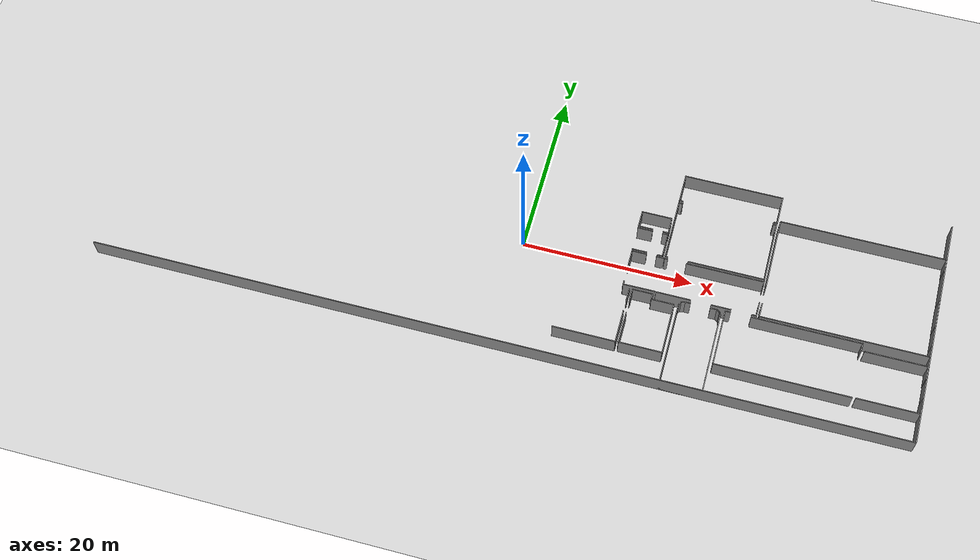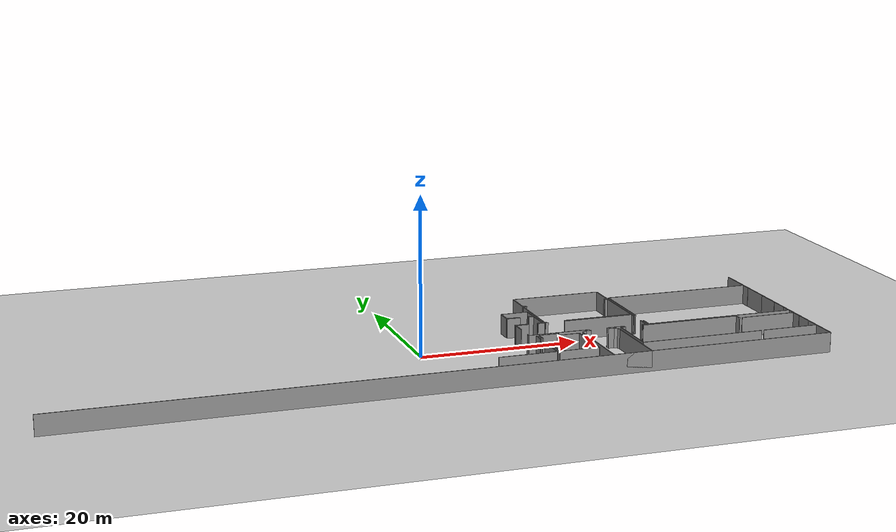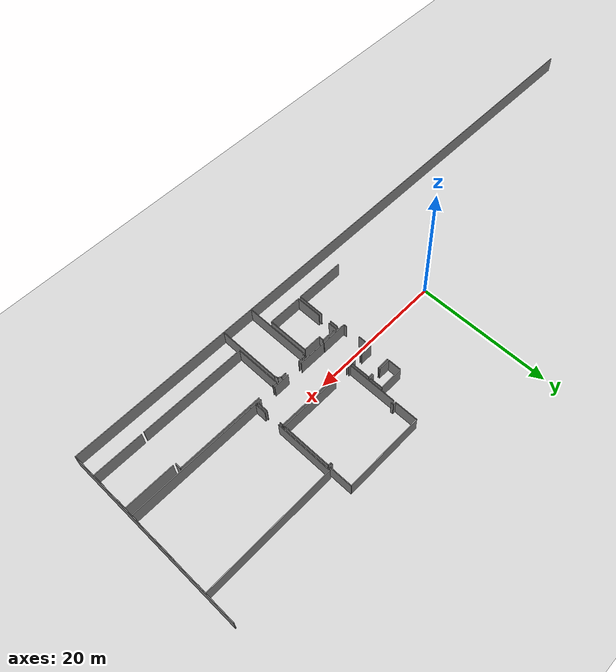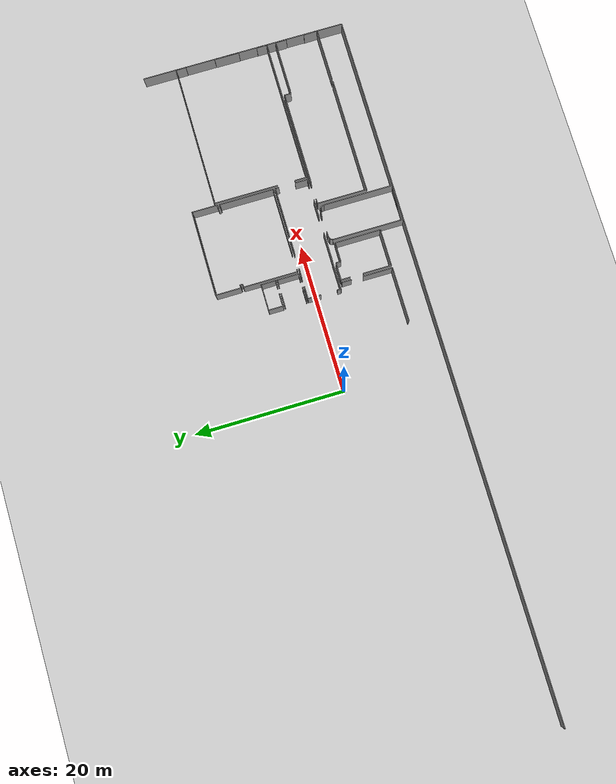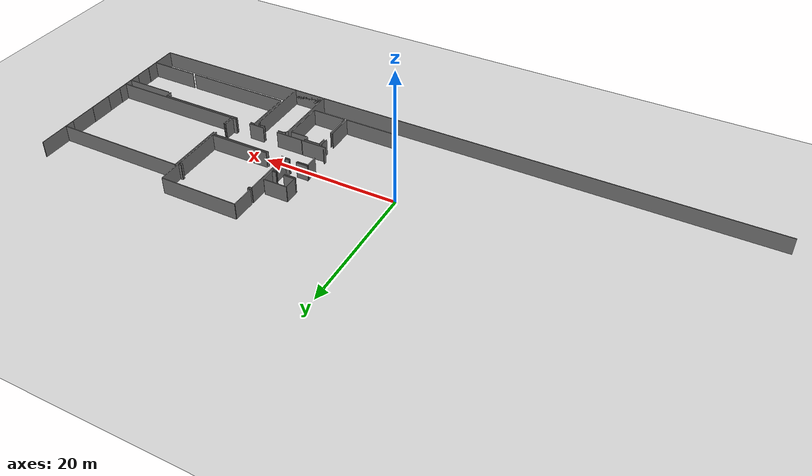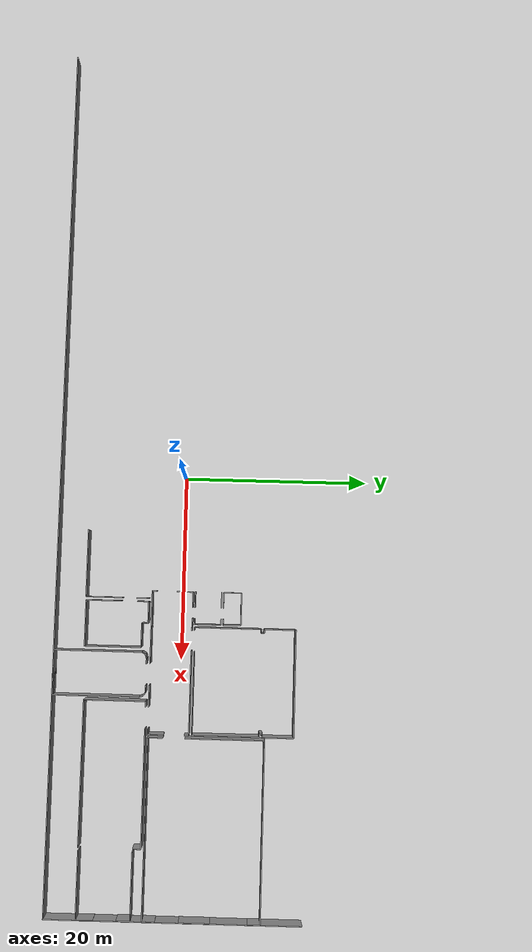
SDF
<sdf version="1.6">
 <world name="default">
  <model name="ground_plane">
   <static>1</static>
   <link name="link">
    <collision name="collision">
     <geometry><plane><normal>0 0 1</normal><size>100 100</size></plane></geometry>
     <surface><friction><ode><mu>100</mu><mu2>50</mu2></ode></friction></surface>
    </collision>
    <visual name="visual">
     <cast_shadows>0</cast_shadows>
     <geometry><plane><normal>0 0 1</normal><size>100 100</size></plane></geometry>
     <material>
      <script><uri>file://media/materials/scripts/gazebo.material</uri><name>Gazebo/Grey</name></script>
     </material>
    </visual>
   </link>
  </model>
  <model name="0510032271_A_40_1_105">
   <static>1</static>
   <link name="Wall_136">
    <collision name="Wall_136_Collision">
     <geometry><box><size>7.29951004036 0.1 2.5</size></box></geometry>
     <pose>3.64975502018 0 1.25 0 0 0</pose>
    </collision>
    <visual name="Wall_136_Visual">
     <pose>3.64975502018 0 1.25 0 0 0</pose>
     <geometry><box><size>7.29951004036 0.1 2.5</size></box></geometry>
     <material>
      <script><uri>file://media/materials/scripts/gazebo.material</uri><name>Gazebo/Grey</name></script>
      <ambient>1 1 1 1</ambient>
     </material>
    </visual>
    <pose>60.9283846564 -24.2889238659 0 0 0 3.14159265359</pose>
   </link>
   <link name="Wall_142">
    <collision name="Wall_142_Collision">
     <geometry><box><size>1.33088776624 0.1 2.5</size></box></geometry>
     <pose>0.665443883121 0 1.25 0 0 0</pose>
    </collision>
    <visual name="Wall_142_Visual">
     <pose>0.665443883121 0 1.25 0 0 0</pose>
     <geometry><box><size>1.33088776624 0.1 2.5</size></box></geometry>
     <material>
      <script><uri>file://media/materials/scripts/gazebo.material</uri><name>Gazebo/Grey</name></script>
      <ambient>1 1 1 1</ambient>
     </material>
    </visual>
    <pose>60.9316849026 -17.4360894621 0 0 0 -1.57079632679</pose>
   </link>
   <link name="Wall_143">
    <collision name="Wall_143_Collision">
     <geometry><box><size>3.95610810144 0.1 2.5</size></box></geometry>
     <pose>1.97805405072 0 1.25 0 0 0</pose>
    </collision>
    <visual name="Wall_143_Visual">
     <pose>1.97805405072 0 1.25 0 0 0</pose>
     <geometry><box><size>3.95610810144 0.1 2.5</size></box></geometry>
     <material>
      <script><uri>file://media/materials/scripts/gazebo.material</uri><name>Gazebo/Grey</name></script>
      <ambient>1 1 1 1</ambient>
     </material>
    </visual>
    <pose>60.9316849026 -20.332817141 0 0 0 -1.57163054228</pose>
   </link>
   <link name="Wall_144">
    <collision name="Wall_144_Collision">
     <geometry><box><size>4.97270950217 0.1 2.5</size></box></geometry>
     <pose>2.48635475109 0 1.25 0 0 0</pose>
    </collision>
    <visual name="Wall_144_Visual">
     <pose>2.48635475109 0 1.25 0 0 0</pose>
     <geometry><box><size>4.97270950217 0.1 2.5</size></box></geometry>
     <material>
      <script><uri>file://media/materials/scripts/gazebo.material</uri><name>Gazebo/Grey</name></script>
      <ambient>1 1 1 1</ambient>
     </material>
    </visual>
    <pose>66.2620903252 -24.2561752685 0 0 0 3.14159265359</pose>
   </link>
   <link name="Wall_145">
    <collision name="Wall_145_Collision">
     <geometry><box><size>3.80505699271 0.1 2.5</size></box></geometry>
     <pose>1.90252849636 0 1.25 0 0 0</pose>
    </collision>
    <visual name="Wall_145_Visual">
     <pose>1.90252849636 0 1.25 0 0 0</pose>
     <geometry><box><size>3.80505699271 0.1 2.5</size></box></geometry>
     <material>
      <script><uri>file://media/materials/scripts/gazebo.material</uri><name>Gazebo/Grey</name></script>
      <ambient>1 1 1 1</ambient>
     </material>
    </visual>
    <pose>61.289380823 -24.2561752685 0 0 0 1.57079632679</pose>
   </link>
   <link name="Wall_146">
    <collision name="Wall_146_Collision">
     <geometry><box><size>1.22858013252 0.1 2.5</size></box></geometry>
     <pose>0.614290066259 0 1.25 0 0 0</pose>
    </collision>
    <visual name="Wall_146_Visual">
     <pose>0.614290066259 0 1.25 0 0 0</pose>
     <geometry><box><size>1.22858013252 0.1 2.5</size></box></geometry>
     <material>
      <script><uri>file://media/materials/scripts/gazebo.material</uri><name>Gazebo/Grey</name></script>
      <ambient>1 1 1 1</ambient>
     </material>
    </visual>
    <pose>61.289380823 -18.6722855475 0 0 0 1.57079632679</pose>
   </link>
   <link name="Wall_147">
    <collision name="Wall_147_Collision">
     <geometry><box><size>2.35015612703 0.1 2.5</size></box></geometry>
     <pose>1.17507806352 0 1.25 0 0 0</pose>
    </collision>
    <visual name="Wall_147_Visual">
     <pose>1.17507806352 0 1.25 0 0 0</pose>
     <geometry><box><size>2.35015612703 0.1 2.5</size></box></geometry>
     <material>
      <script><uri>file://media/materials/scripts/gazebo.material</uri><name>Gazebo/Grey</name></script>
      <ambient>1 1 1 1</ambient>
     </material>
    </visual>
    <pose>61.289380823 -17.4437054149 0 0 0 0.0</pose>
   </link>
   <link name="Wall_148">
    <collision name="Wall_148_Collision">
     <geometry><box><size>0.671853976797 0.1 2.5</size></box></geometry>
     <pose>0.335926988398 0 1.25 0 0 0</pose>
    </collision>
    <visual name="Wall_148_Visual">
     <pose>0.335926988398 0 1.25 0 0 0</pose>
     <geometry><box><size>0.671853976797 0.1 2.5</size></box></geometry>
     <material>
      <script><uri>file://media/materials/scripts/gazebo.material</uri><name>Gazebo/Grey</name></script>
      <ambient>1 1 1 1</ambient>
     </material>
    </visual>
    <pose>63.6395369501 -17.4437054149 0 0 0 -1.57079632679</pose>
   </link>
   <link name="Wall_149">
    <collision name="Wall_149_Collision">
     <geometry><box><size>2.61062171562 0.1 2.5</size></box></geometry>
     <pose>1.30531085781 0 1.25 0 0 0</pose>
    </collision>
    <visual name="Wall_149_Visual">
     <pose>1.30531085781 0 1.25 0 0 0</pose>
     <geometry><box><size>2.61062171562 0.1 2.5</size></box></geometry>
     <material>
      <script><uri>file://media/materials/scripts/gazebo.material</uri><name>Gazebo/Grey</name></script>
      <ambient>1 1 1 1</ambient>
     </material>
    </visual>
    <pose>63.6395369501 -18.1155593917 0 0 0 0.0</pose>
   </link>
   <link name="Wall_150">
    <collision name="Wall_150_Collision">
     <geometry><box><size>6.14062746875 0.1 2.5</size></box></geometry>
     <pose>3.07031373437 0 1.25 0 0 0</pose>
    </collision>
    <visual name="Wall_150_Visual">
     <pose>3.07031373437 0 1.25 0 0 0</pose>
     <geometry><box><size>6.14062746875 0.1 2.5</size></box></geometry>
     <material>
      <script><uri>file://media/materials/scripts/gazebo.material</uri><name>Gazebo/Grey</name></script>
      <ambient>1 1 1 1</ambient>
     </material>
    </visual>
    <pose>66.2501586657 -18.1155593917 0 0 0 -1.56885325712</pose>
   </link>
   <link name="Wall_151">
    <collision name="Wall_151_Collision">
     <geometry><box><size>0.501891294966 0.1 2.5</size></box></geometry>
     <pose>0.250945647483 0 1.25 0 0 0</pose>
    </collision>
    <visual name="Wall_151_Visual">
     <pose>0.250945647483 0 1.25 0 0 0</pose>
     <geometry><box><size>0.501891294966 0.1 2.5</size></box></geometry>
     <material>
      <script><uri>file://media/materials/scripts/gazebo.material</uri><name>Gazebo/Grey</name></script>
      <ambient>1 1 1 1</ambient>
     </material>
    </visual>
    <pose>60.1218552461 -17.0905790663 0 0 0 1.57079632679</pose>
   </link>
   <link name="Wall_152">
    <collision name="Wall_152_Collision">
     <geometry><box><size>1.75166916301 0.1 2.5</size></box></geometry>
     <pose>0.875834581503 0 1.25 0 0 0</pose>
    </collision>
    <visual name="Wall_152_Visual">
     <pose>0.875834581503 0 1.25 0 0 0</pose>
     <geometry><box><size>1.75166916301 0.1 2.5</size></box></geometry>
     <material>
      <script><uri>file://media/materials/scripts/gazebo.material</uri><name>Gazebo/Grey</name></script>
      <ambient>1 1 1 1</ambient>
     </material>
    </visual>
    <pose>60.1218552461 -14.3935162854 0 0 0 1.57079632679</pose>
   </link>
   <link name="Wall_153">
    <collision name="Wall_153_Collision">
     <geometry><box><size>1.69010687721 0.1 2.5</size></box></geometry>
     <pose>0.845053438603 0 1.25 0 0 0</pose>
    </collision>
    <visual name="Wall_153_Visual">
     <pose>0.845053438603 0 1.25 0 0 0</pose>
     <geometry><box><size>1.69010687721 0.1 2.5</size></box></geometry>
     <material>
      <script><uri>file://media/materials/scripts/gazebo.material</uri><name>Gazebo/Grey</name></script>
      <ambient>1 1 1 1</ambient>
     </material>
    </visual>
    <pose>60.1218552461 -12.6418471224 0 0 0 0.0</pose>
   </link>
   <link name="Wall_154">
    <collision name="Wall_154_Collision">
     <geometry><box><size>0.878880962656 0.1 2.5</size></box></geometry>
     <pose>0.439440481328 0 1.25 0 0 0</pose>
    </collision>
    <visual name="Wall_154_Visual">
     <pose>0.439440481328 0 1.25 0 0 0</pose>
     <geometry><box><size>0.878880962656 0.1 2.5</size></box></geometry>
     <material>
      <script><uri>file://media/materials/scripts/gazebo.material</uri><name>Gazebo/Grey</name></script>
      <ambient>1 1 1 1</ambient>
     </material>
    </visual>
    <pose>62.9772029144 -12.6418471224 0 0 0 0.0</pose>
   </link>
   <link name="Wall_155">
    <collision name="Wall_155_Collision">
     <geometry><box><size>3.73436131252 0.1 2.5</size></box></geometry>
     <pose>1.86718065626 0 1.25 0 0 0</pose>
    </collision>
    <visual name="Wall_155_Visual">
     <pose>1.86718065626 0 1.25 0 0 0</pose>
     <geometry><box><size>3.73436131252 0.1 2.5</size></box></geometry>
     <material>
      <script><uri>file://media/materials/scripts/gazebo.material</uri><name>Gazebo/Grey</name></script>
      <ambient>1 1 1 1</ambient>
     </material>
    </visual>
    <pose>63.856083877 -17.0590997944 0 0 0 -3.13316292703</pose>
   </link>
   <link name="Wall_156">
    <collision name="Wall_156_Collision">
     <geometry><box><size>0.624762001472 0.1 2.5</size></box></geometry>
     <pose>0.312381000736 0 1.25 0 0 0</pose>
    </collision>
    <visual name="Wall_156_Visual">
     <pose>0.312381000736 0 1.25 0 0 0</pose>
     <geometry><box><size>0.624762001472 0.1 2.5</size></box></geometry>
     <material>
      <script><uri>file://media/materials/scripts/gazebo.material</uri><name>Gazebo/Grey</name></script>
      <ambient>1 1 1 1</ambient>
     </material>
    </visual>
    <pose>63.6265898302 -12.4063872458 0 0 0 3.14159265359</pose>
   </link>
   <link name="Wall_157">
    <collision name="Wall_157_Collision">
     <geometry><box><size>1.75166916301 0.1 2.5</size></box></geometry>
     <pose>0.875834581503 0 1.25 0 0 0</pose>
    </collision>
    <visual name="Wall_157_Visual">
     <pose>0.875834581503 0 1.25 0 0 0</pose>
     <geometry><box><size>1.75166916301 0.1 2.5</size></box></geometry>
     <material>
      <script><uri>file://media/materials/scripts/gazebo.material</uri><name>Gazebo/Grey</name></script>
      <ambient>1 1 1 1</ambient>
     </material>
    </visual>
    <pose>61.8194511437 -12.4063872458 0 0 0 3.14159265359</pose>
   </link>
   <link name="Wall_159">
    <collision name="Wall_159_Collision">
     <geometry><box><size>1.7389759082 0.1 2.5</size></box></geometry>
     <pose>0.869487954101 0 1.25 0 0 0</pose>
    </collision>
    <visual name="Wall_159_Visual">
     <pose>0.869487954101 0 1.25 0 0 0</pose>
     <geometry><box><size>1.7389759082 0.1 2.5</size></box></geometry>
     <material>
      <script><uri>file://media/materials/scripts/gazebo.material</uri><name>Gazebo/Grey</name></script>
      <ambient>1 1 1 1</ambient>
     </material>
    </visual>
    <pose>60.0677819807 -9.51930644056 0 0 0 0.0</pose>
   </link>
   <link name="Wall_160">
    <collision name="Wall_160_Collision">
     <geometry><box><size>0.61841537407 0.1 2.5</size></box></geometry>
     <pose>0.309207687035 0 1.25 0 0 0</pose>
    </collision>
    <visual name="Wall_160_Visual">
     <pose>0.309207687035 0 1.25 0 0 0</pose>
     <geometry><box><size>0.61841537407 0.1 2.5</size></box></geometry>
     <material>
      <script><uri>file://media/materials/scripts/gazebo.material</uri><name>Gazebo/Grey</name></script>
      <ambient>1 1 1 1</ambient>
     </material>
    </visual>
    <pose>62.9956081338 -9.51930644056 0 0 0 0.0</pose>
   </link>
   <link name="Wall_161">
    <collision name="Wall_161_Collision">
     <geometry><box><size>2.88710815325 0.1 2.5</size></box></geometry>
     <pose>1.44355407662 0 1.25 0 0 0</pose>
    </collision>
    <visual name="Wall_161_Visual">
     <pose>1.44355407662 0 1.25 0 0 0</pose>
     <geometry><box><size>2.88710815325 0.1 2.5</size></box></geometry>
     <material>
      <script><uri>file://media/materials/scripts/gazebo.material</uri><name>Gazebo/Grey</name></script>
      <ambient>1 1 1 1</ambient>
     </material>
    </visual>
    <pose>63.6140235079 -9.51930644056 0 0 0 -1.56644374931</pose>
   </link>
   <link name="Wall_162">
    <collision name="Wall_162_Collision">
     <geometry><box><size>0.642532558199 0.1 2.5</size></box></geometry>
     <pose>0.321266279099 0 1.25 0 0 0</pose>
    </collision>
    <visual name="Wall_162_Visual">
     <pose>0.321266279099 0 1.25 0 0 0</pose>
     <geometry><box><size>0.642532558199 0.1 2.5</size></box></geometry>
     <material>
      <script><uri>file://media/materials/scripts/gazebo.material</uri><name>Gazebo/Grey</name></script>
      <ambient>1 1 1 1</ambient>
     </material>
    </visual>
    <pose>63.6273514255 -9.28600441725 0 0 0 3.14159265359</pose>
   </link>
   <link name="Wall_163">
    <collision name="Wall_163_Collision">
     <geometry><box><size>1.71930136326 0.1 2.5</size></box></geometry>
     <pose>0.859650681628 0 1.25 0 0 0</pose>
    </collision>
    <visual name="Wall_163_Visual">
     <pose>0.859650681628 0 1.25 0 0 0</pose>
     <geometry><box><size>1.71930136326 0.1 2.5</size></box></geometry>
     <material>
      <script><uri>file://media/materials/scripts/gazebo.material</uri><name>Gazebo/Grey</name></script>
      <ambient>1 1 1 1</ambient>
     </material>
    </visual>
    <pose>61.81627783 -9.28600441725 0 0 0 3.14159265359</pose>
   </link>
   <link name="Wall_164">
    <collision name="Wall_164_Collision">
     <geometry><box><size>1.94473356858 0.1 2.5</size></box></geometry>
     <pose>0.972366784291 0 1.25 0 0 0</pose>
    </collision>
    <visual name="Wall_164_Visual">
     <pose>0.972366784291 0 1.25 0 0 0</pose>
     <geometry><box><size>1.94473356858 0.1 2.5</size></box></geometry>
     <material>
      <script><uri>file://media/materials/scripts/gazebo.material</uri><name>Gazebo/Grey</name></script>
      <ambient>1 1 1 1</ambient>
     </material>
    </visual>
    <pose>60.0969764667 -9.28600441725 0 0 0 1.57079632679</pose>
   </link>
   <link name="Wall_165">
    <collision name="Wall_165_Collision">
     <geometry><box><size>3.49699169861 0.1 2.5</size></box></geometry>
     <pose>1.74849584931 0 1.25 0 0 0</pose>
    </collision>
    <visual name="Wall_165_Visual">
     <pose>1.74849584931 0 1.25 0 0 0</pose>
     <geometry><box><size>3.49699169861 0.1 2.5</size></box></geometry>
     <material>
      <script><uri>file://media/materials/scripts/gazebo.material</uri><name>Gazebo/Grey</name></script>
      <ambient>1 1 1 1</ambient>
     </material>
    </visual>
    <pose>60.0969764667 -7.34127084867 0 0 0 0.0</pose>
   </link>
   <link name="Wall_166">
    <collision name="Wall_166_Collision">
     <geometry><box><size>1.94502007569 0.1 2.5</size></box></geometry>
     <pose>0.972510037844 0 1.25 0 0 0</pose>
    </collision>
    <visual name="Wall_166_Visual">
     <pose>0.972510037844 0 1.25 0 0 0</pose>
     <geometry><box><size>1.94502007569 0.1 2.5</size></box></geometry>
     <material>
      <script><uri>file://media/materials/scripts/gazebo.material</uri><name>Gazebo/Grey</name></script>
      <ambient>1 1 1 1</ambient>
     </material>
    </visual>
    <pose>63.5939681653 -7.34127084867 0 0 0 -1.55363203127</pose>
   </link>
   <link name="Wall_167">
    <collision name="Wall_167_Collision">
     <geometry><box><size>0.570815668554 0.1 2.5</size></box></geometry>
     <pose>0.285407834277 0 1.25 0 0 0</pose>
    </collision>
    <visual name="Wall_167_Visual">
     <pose>0.285407834277 0 1.25 0 0 0</pose>
     <geometry><box><size>0.570815668554 0.1 2.5</size></box></geometry>
     <material>
      <script><uri>file://media/materials/scripts/gazebo.material</uri><name>Gazebo/Grey</name></script>
      <ambient>1 1 1 1</ambient>
     </material>
    </visual>
    <pose>75.5329897692 -17.0874057526 0 0 0 3.14159265359</pose>
   </link>
   <link name="Wall_168">
    <collision name="Wall_168_Collision">
     <geometry><box><size>2.32819679622 0.1 2.5</size></box></geometry>
     <pose>1.16409839811 0 1.25 0 0 0</pose>
    </collision>
    <visual name="Wall_168_Visual">
     <pose>1.16409839811 0 1.25 0 0 0</pose>
     <geometry><box><size>2.32819679622 0.1 2.5</size></box></geometry>
     <material>
      <script><uri>file://media/materials/scripts/gazebo.material</uri><name>Gazebo/Grey</name></script>
      <ambient>1 1 1 1</ambient>
     </material>
    </visual>
    <pose>72.6156990175 -17.0874057526 0 0 0 3.14159265359</pose>
   </link>
   <link name="Wall_169">
    <collision name="Wall_169_Collision">
     <geometry><box><size>4.02769668198 0.1 2.5</size></box></geometry>
     <pose>2.01384834099 0 1.25 0 0 0</pose>
    </collision>
    <visual name="Wall_169_Visual">
     <pose>2.01384834099 0 1.25 0 0 0</pose>
     <geometry><box><size>4.02769668198 0.1 2.5</size></box></geometry>
     <material>
      <script><uri>file://media/materials/scripts/gazebo.material</uri><name>Gazebo/Grey</name></script>
      <ambient>1 1 1 1</ambient>
     </material>
    </visual>
    <pose>67.9806300932 -17.0874057526 0 0 0 3.14159265359</pose>
   </link>
   <link name="Wall_170">
    <collision name="Wall_170_Collision">
     <geometry><box><size>0.374197151634 0.1 2.5</size></box></geometry>
     <pose>0.187098575817 0 1.25 0 0 0</pose>
    </collision>
    <visual name="Wall_170_Visual">
     <pose>0.187098575817 0 1.25 0 0 0</pose>
     <geometry><box><size>0.374197151634 0.1 2.5</size></box></geometry>
     <material>
      <script><uri>file://media/materials/scripts/gazebo.material</uri><name>Gazebo/Grey</name></script>
      <ambient>1 1 1 1</ambient>
     </material>
    </visual>
    <pose>63.9529334112 -12.6588560839 0 0 0 0.0</pose>
   </link>
   <link name="Wall_171">
    <collision name="Wall_171_Collision">
     <geometry><box><size>9.06298393034 0.1 2.5</size></box></geometry>
     <pose>4.53149196517 0 1.25 0 0 0</pose>
    </collision>
    <visual name="Wall_171_Visual">
     <pose>4.53149196517 0 1.25 0 0 0</pose>
     <geometry><box><size>9.06298393034 0.1 2.5</size></box></geometry>
     <material>
      <script><uri>file://media/materials/scripts/gazebo.material</uri><name>Gazebo/Grey</name></script>
      <ambient>1 1 1 1</ambient>
     </material>
    </visual>
    <pose>66.4778756569 -12.6588560839 0 0 0 0.0</pose>
   </link>
   <link name="Wall_172">
    <collision name="Wall_172_Collision">
     <geometry><box><size>0.503414485542 0.1 2.5</size></box></geometry>
     <pose>0.251707242771 0 1.25 0 0 0</pose>
    </collision>
    <visual name="Wall_172_Visual">
     <pose>0.251707242771 0 1.25 0 0 0</pose>
     <geometry><box><size>0.503414485542 0.1 2.5</size></box></geometry>
     <material>
      <script><uri>file://media/materials/scripts/gazebo.material</uri><name>Gazebo/Grey</name></script>
      <ambient>1 1 1 1</ambient>
     </material>
    </visual>
    <pose>75.5408595872 -12.6588560839 0 0 0 -1.57079632679</pose>
   </link>
   <link name="Wall_173">
    <collision name="Wall_173_Collision">
     <geometry><box><size>1.71868471847 0.1 2.5</size></box></geometry>
     <pose>0.859342359234 0 1.25 0 0 0</pose>
    </collision>
    <visual name="Wall_173_Visual">
     <pose>0.859342359234 0 1.25 0 0 0</pose>
     <geometry><box><size>1.71868471847 0.1 2.5</size></box></geometry>
     <material>
      <script><uri>file://media/materials/scripts/gazebo.material</uri><name>Gazebo/Grey</name></script>
      <ambient>1 1 1 1</ambient>
     </material>
    </visual>
    <pose>75.5408595872 -15.3687390521 0 0 0 -1.5753753199</pose>
   </link>
   <link name="Wall_174">
    <collision name="Wall_174_Collision">
     <geometry><box><size>8.92120027417 0.1 2.5</size></box></geometry>
     <pose>4.46060013709 0 1.25 0 0 0</pose>
    </collision>
    <visual name="Wall_174_Visual">
     <pose>4.46060013709 0 1.25 0 0 0</pose>
     <geometry><box><size>8.92120027417 0.1 2.5</size></box></geometry>
     <material>
      <script><uri>file://media/materials/scripts/gazebo.material</uri><name>Gazebo/Grey</name></script>
      <ambient>1 1 1 1</ambient>
     </material>
    </visual>
    <pose>75.5281663324 -12.3625955167 0 0 0 3.14159265359</pose>
   </link>
   <link name="Wall_175">
    <collision name="Wall_175_Collision">
     <geometry><box><size>0.320123886167 0.1 2.5</size></box></geometry>
     <pose>0.160061943083 0 1.25 0 0 0</pose>
    </collision>
    <visual name="Wall_175_Visual">
     <pose>0.160061943083 0 1.25 0 0 0</pose>
     <geometry><box><size>0.320123886167 0.1 2.5</size></box></geometry>
     <material>
      <script><uri>file://media/materials/scripts/gazebo.material</uri><name>Gazebo/Grey</name></script>
      <ambient>1 1 1 1</ambient>
     </material>
    </visual>
    <pose>64.2609987053 -12.3625955167 0 0 0 3.14159265359</pose>
   </link>
   <link name="Wall_176">
    <collision name="Wall_176_Collision">
     <geometry><box><size>7.28300880912 0.1 2.5</size></box></geometry>
     <pose>3.64150440456 0 1.25 0 0 0</pose>
    </collision>
    <visual name="Wall_176_Visual">
     <pose>3.64150440456 0 1.25 0 0 0</pose>
     <geometry><box><size>7.28300880912 0.1 2.5</size></box></geometry>
     <material>
      <script><uri>file://media/materials/scripts/gazebo.material</uri><name>Gazebo/Grey</name></script>
      <ambient>1 1 1 1</ambient>
     </material>
    </visual>
    <pose>63.9408748191 -12.3625955167 0 0 0 1.57079632679</pose>
   </link>
   <link name="Wall_177">
    <collision name="Wall_177_Collision">
     <geometry><box><size>0.421035261862 0.1 2.5</size></box></geometry>
     <pose>0.210517630931 0 1.25 0 0 0</pose>
    </collision>
    <visual name="Wall_177_Visual">
     <pose>0.210517630931 0 1.25 0 0 0</pose>
     <geometry><box><size>0.421035261862 0.1 2.5</size></box></geometry>
     <material>
      <script><uri>file://media/materials/scripts/gazebo.material</uri><name>Gazebo/Grey</name></script>
      <ambient>1 1 1 1</ambient>
     </material>
    </visual>
    <pose>63.9408748191 -5.07958670762 0 0 0 0.0</pose>
   </link>
   <link name="Wall_178">
    <collision name="Wall_178_Collision">
     <geometry><box><size>0.342210149527 0.1 2.5</size></box></geometry>
     <pose>0.171105074763 0 1.25 0 0 0</pose>
    </collision>
    <visual name="Wall_178_Visual">
     <pose>0.171105074763 0 1.25 0 0 0</pose>
     <geometry><box><size>0.342210149527 0.1 2.5</size></box></geometry>
     <material>
      <script><uri>file://media/materials/scripts/gazebo.material</uri><name>Gazebo/Grey</name></script>
      <ambient>1 1 1 1</ambient>
     </material>
    </visual>
    <pose>64.361910081 -5.07958670762 0 0 0 1.57079632679</pose>
   </link>
   <link name="Wall_179">
    <collision name="Wall_179_Collision">
     <geometry><box><size>0.417354217969 0.1 2.5</size></box></geometry>
     <pose>0.208677108984 0 1.25 0 0 0</pose>
    </collision>
    <visual name="Wall_179_Visual">
     <pose>0.208677108984 0 1.25 0 0 0</pose>
     <geometry><box><size>0.417354217969 0.1 2.5</size></box></geometry>
     <material>
      <script><uri>file://media/materials/scripts/gazebo.material</uri><name>Gazebo/Grey</name></script>
      <ambient>1 1 1 1</ambient>
     </material>
    </visual>
    <pose>64.361910081 -4.7373765581 0 0 0 3.14159265359</pose>
   </link>
   <link name="Wall_180">
    <collision name="Wall_180_Collision">
     <geometry><box><size>3.3968419182 0.1 2.5</size></box></geometry>
     <pose>1.6984209591 0 1.25 0 0 0</pose>
    </collision>
    <visual name="Wall_180_Visual">
     <pose>1.6984209591 0 1.25 0 0 0</pose>
     <geometry><box><size>3.3968419182 0.1 2.5</size></box></geometry>
     <material>
      <script><uri>file://media/materials/scripts/gazebo.material</uri><name>Gazebo/Grey</name></script>
      <ambient>1 1 1 1</ambient>
     </material>
    </visual>
    <pose>63.944555863 -4.7373765581 0 0 0 1.57079632679</pose>
   </link>
   <link name="Wall_181">
    <collision name="Wall_181_Collision">
     <geometry><box><size>11.5857683227 0.1 2.5</size></box></geometry>
     <pose>5.79288416136 0 1.25 0 0 0</pose>
    </collision>
    <visual name="Wall_181_Visual">
     <pose>5.79288416136 0 1.25 0 0 0</pose>
     <geometry><box><size>11.5857683227 0.1 2.5</size></box></geometry>
     <material>
      <script><uri>file://media/materials/scripts/gazebo.material</uri><name>Gazebo/Grey</name></script>
      <ambient>1 1 1 1</ambient>
     </material>
    </visual>
    <pose>63.944555863 -1.34053463989 0 0 0 0.0</pose>
   </link>
   <link name="Wall_182">
    <collision name="Wall_182_Collision">
     <geometry><box><size>3.42095910233 0.1 2.5</size></box></geometry>
     <pose>1.71047955117 0 1.25 0 0 0</pose>
    </collision>
    <visual name="Wall_182_Visual">
     <pose>1.71047955117 0 1.25 0 0 0</pose>
     <geometry><box><size>3.42095910233 0.1 2.5</size></box></geometry>
     <material>
      <script><uri>file://media/materials/scripts/gazebo.material</uri><name>Gazebo/Grey</name></script>
      <ambient>1 1 1 1</ambient>
     </material>
    </visual>
    <pose>75.5303241857 -1.34053463989 0 0 0 -1.57079632679</pose>
   </link>
   <link name="Wall_183">
    <collision name="Wall_183_Collision">
     <geometry><box><size>0.419385138737 0.1 2.5</size></box></geometry>
     <pose>0.209692569369 0 1.25 0 0 0</pose>
    </collision>
    <visual name="Wall_183_Visual">
     <pose>0.209692569369 0 1.25 0 0 0</pose>
     <geometry><box><size>0.419385138737 0.1 2.5</size></box></geometry>
     <material>
      <script><uri>file://media/materials/scripts/gazebo.material</uri><name>Gazebo/Grey</name></script>
      <ambient>1 1 1 1</ambient>
     </material>
    </visual>
    <pose>75.5303241857 -4.76149374223 0 0 0 3.14159265359</pose>
   </link>
   <link name="Wall_184">
    <collision name="Wall_184_Collision">
     <geometry><box><size>0.298037622807 0.1 2.5</size></box></geometry>
     <pose>0.149018811404 0 1.25 0 0 0</pose>
    </collision>
    <visual name="Wall_184_Visual">
     <pose>0.149018811404 0 1.25 0 0 0</pose>
     <geometry><box><size>0.298037622807 0.1 2.5</size></box></geometry>
     <material>
      <script><uri>file://media/materials/scripts/gazebo.material</uri><name>Gazebo/Grey</name></script>
      <ambient>1 1 1 1</ambient>
     </material>
    </visual>
    <pose>75.110939047 -4.76149374223 0 0 0 -1.57079632679</pose>
   </link>
   <link name="Wall_185">
    <collision name="Wall_185_Collision">
     <geometry><box><size>0.397298875378 0.1 2.5</size></box></geometry>
     <pose>0.198649437689 0 1.25 0 0 0</pose>
    </collision>
    <visual name="Wall_185_Visual">
     <pose>0.198649437689 0 1.25 0 0 0</pose>
     <geometry><box><size>0.397298875378 0.1 2.5</size></box></geometry>
     <material>
      <script><uri>file://media/materials/scripts/gazebo.material</uri><name>Gazebo/Grey</name></script>
      <ambient>1 1 1 1</ambient>
     </material>
    </visual>
    <pose>75.110939047 -5.05953136503 0 0 0 0.0</pose>
   </link>
   <link name="Wall_186">
    <collision name="Wall_186_Collision">
     <geometry><box><size>7.30309134172 0.1 2.5</size></box></geometry>
     <pose>3.65154567086 0 1.25 0 0 0</pose>
    </collision>
    <visual name="Wall_186_Visual">
     <pose>3.65154567086 0 1.25 0 0 0</pose>
     <geometry><box><size>7.30309134172 0.1 2.5</size></box></geometry>
     <material>
      <script><uri>file://media/materials/scripts/gazebo.material</uri><name>Gazebo/Grey</name></script>
      <ambient>1 1 1 1</ambient>
     </material>
    </visual>
    <pose>75.5082379224 -5.05953136503 0 0 0 -1.56806755978</pose>
   </link>
   <link name="Wall_187">
    <collision name="Wall_187_Collision">
     <geometry><box><size>4.8346068899 0.1 2.5</size></box></geometry>
     <pose>2.41730344495 0 1.25 0 0 0</pose>
    </collision>
    <visual name="Wall_187_Visual">
     <pose>2.41730344495 0 1.25 0 0 0</pose>
     <geometry><box><size>4.8346068899 0.1 2.5</size></box></geometry>
     <material>
      <script><uri>file://media/materials/scripts/gazebo.material</uri><name>Gazebo/Grey</name></script>
      <ambient>1 1 1 1</ambient>
     </material>
    </visual>
    <pose>71.5880531086 -27.5791424437 0 0 0 3.14159265359</pose>
   </link>
   <link name="Wall_188">
    <collision name="Wall_188_Collision">
     <geometry><box><size>9.61006321241 0.1 2.5</size></box></geometry>
     <pose>4.8050316062 0 1.25 0 0 0</pose>
    </collision>
    <visual name="Wall_188_Visual">
     <pose>4.8050316062 0 1.25 0 0 0</pose>
     <geometry><box><size>9.61006321241 0.1 2.5</size></box></geometry>
     <material>
      <script><uri>file://media/materials/scripts/gazebo.material</uri><name>Gazebo/Grey</name></script>
      <ambient>1 1 1 1</ambient>
     </material>
    </visual>
    <pose>66.7534462187 -27.5791424437 0 0 0 1.57079632679</pose>
   </link>
   <link name="Wall_189">
    <collision name="Wall_189_Collision">
     <geometry><box><size>0.416298702247 0.1 2.5</size></box></geometry>
     <pose>0.208149351123 0 1.25 0 0 0</pose>
    </collision>
    <visual name="Wall_189_Visual">
     <pose>0.208149351123 0 1.25 0 0 0</pose>
     <geometry><box><size>0.416298702247 0.1 2.5</size></box></geometry>
     <material>
      <script><uri>file://media/materials/scripts/gazebo.material</uri><name>Gazebo/Grey</name></script>
      <ambient>1 1 1 1</ambient>
     </material>
    </visual>
    <pose>66.7534462187 -17.9690792313 0 0 0 1.0587224444</pose>
   </link>
   <link name="Wall_190">
    <collision name="Wall_190_Collision">
     <geometry><box><size>0.471732122234 0.1 2.5</size></box></geometry>
     <pose>0.235866061117 0 1.25 0 0 0</pose>
    </collision>
    <visual name="Wall_190_Visual">
     <pose>0.235866061117 0 1.25 0 0 0</pose>
     <geometry><box><size>0.471732122234 0.1 2.5</size></box></geometry>
     <material>
      <script><uri>file://media/materials/scripts/gazebo.material</uri><name>Gazebo/Grey</name></script>
      <ambient>1 1 1 1</ambient>
     </material>
    </visual>
    <pose>66.9574268234 -17.6061790764 0 0 0 0.248763804614</pose>
   </link>
   <link name="Wall_191">
    <collision name="Wall_191_Collision">
     <geometry><box><size>0.616892183494 0.1 2.5</size></box></geometry>
     <pose>0.308446091747 0 1.25 0 0 0</pose>
    </collision>
    <visual name="Wall_191_Visual">
     <pose>0.308446091747 0 1.25 0 0 0</pose>
     <geometry><box><size>0.616892183494 0.1 2.5</size></box></geometry>
     <material>
      <script><uri>file://media/materials/scripts/gazebo.material</uri><name>Gazebo/Grey</name></script>
      <ambient>1 1 1 1</ambient>
     </material>
    </visual>
    <pose>67.4146378614 -17.490035795 0 0 0 0.0</pose>
   </link>
   <link name="Wall_192">
    <collision name="Wall_192_Collision">
     <geometry><box><size>0.748648168363 0.1 2.5</size></box></geometry>
     <pose>0.374324084182 0 1.25 0 0 0</pose>
    </collision>
    <visual name="Wall_192_Visual">
     <pose>0.374324084182 0 1.25 0 0 0</pose>
     <geometry><box><size>0.748648168363 0.1 2.5</size></box></geometry>
     <material>
      <script><uri>file://media/materials/scripts/gazebo.material</uri><name>Gazebo/Grey</name></script>
      <ambient>1 1 1 1</ambient>
     </material>
    </visual>
    <pose>70.3100962149 -17.490035795 0 0 0 0.0</pose>
   </link>
   <link name="Wall_193">
    <collision name="Wall_193_Collision">
     <geometry><box><size>0.448525817102 0.1 2.5</size></box></geometry>
     <pose>0.224262908551 0 1.25 0 0 0</pose>
    </collision>
    <visual name="Wall_193_Visual">
     <pose>0.224262908551 0 1.25 0 0 0</pose>
     <geometry><box><size>0.448525817102 0.1 2.5</size></box></geometry>
     <material>
      <script><uri>file://media/materials/scripts/gazebo.material</uri><name>Gazebo/Grey</name></script>
      <ambient>1 1 1 1</ambient>
     </material>
    </visual>
    <pose>71.0587443832 -17.490035795 0 0 0 -0.543719818321</pose>
   </link>
   <link name="Wall_194">
    <collision name="Wall_194_Collision">
     <geometry><box><size>0.446161767347 0.1 2.5</size></box></geometry>
     <pose>0.223080883674 0 1.25 0 0 0</pose>
    </collision>
    <visual name="Wall_194_Visual">
     <pose>0.223080883674 0 1.25 0 0 0</pose>
     <geometry><box><size>0.446161767347 0.1 2.5</size></box></geometry>
     <material>
      <script><uri>file://media/materials/scripts/gazebo.material</uri><name>Gazebo/Grey</name></script>
      <ambient>1 1 1 1</ambient>
     </material>
    </visual>
    <pose>71.4425884085 -17.7220684928 0 0 0 -1.24229823648</pose>
   </link>
   <link name="Wall_195">
    <collision name="Wall_195_Collision">
     <geometry><box><size>9.43476948652 0.1 2.5</size></box></geometry>
     <pose>4.71738474326 0 1.25 0 0 0</pose>
    </collision>
    <visual name="Wall_195_Visual">
     <pose>4.71738474326 0 1.25 0 0 0</pose>
     <geometry><box><size>9.43476948652 0.1 2.5</size></box></geometry>
     <material>
      <script><uri>file://media/materials/scripts/gazebo.material</uri><name>Gazebo/Grey</name></script>
      <ambient>1 1 1 1</ambient>
     </material>
    </visual>
    <pose>71.586529918 -18.1443730801 0 0 0 -1.57063488241</pose>
   </link>
   <link name="Wall_196">
    <collision name="Wall_196_Collision">
     <geometry><box><size>0.90134802366 0.1 2.5</size></box></geometry>
     <pose>0.45067401183 0 1.25 0 0 0</pose>
    </collision>
    <visual name="Wall_196_Visual">
     <pose>0.45067401183 0 1.25 0 0 0</pose>
     <geometry><box><size>0.90134802366 0.1 2.5</size></box></geometry>
     <material>
      <script><uri>file://media/materials/scripts/gazebo.material</uri><name>Gazebo/Grey</name></script>
      <ambient>1 1 1 1</ambient>
     </material>
    </visual>
    <pose>87.624838161 -18.3079891346 0 0 0 1.57079632679</pose>
   </link>
   <link name="Wall_197">
    <collision name="Wall_197_Collision">
     <geometry><box><size>12.6577136909 0.1 2.5</size></box></geometry>
     <pose>6.32885684547 0 1.25 0 0 0</pose>
    </collision>
    <visual name="Wall_197_Visual">
     <pose>6.32885684547 0 1.25 0 0 0</pose>
     <geometry><box><size>12.6577136909 0.1 2.5</size></box></geometry>
     <material>
      <script><uri>file://media/materials/scripts/gazebo.material</uri><name>Gazebo/Grey</name></script>
      <ambient>1 1 1 1</ambient>
     </material>
    </visual>
    <pose>87.624838161 -17.4066411109 0 0 0 3.14159265359</pose>
   </link>
   <link name="Wall_198">
    <collision name="Wall_198_Collision">
     <geometry><box><size>0.625904394405 0.1 2.5</size></box></geometry>
     <pose>0.312952197202 0 1.25 0 0 0</pose>
    </collision>
    <visual name="Wall_198_Visual">
     <pose>0.312952197202 0 1.25 0 0 0</pose>
     <geometry><box><size>0.625904394405 0.1 2.5</size></box></geometry>
     <material>
      <script><uri>file://media/materials/scripts/gazebo.material</uri><name>Gazebo/Grey</name></script>
      <ambient>1 1 1 1</ambient>
     </material>
    </visual>
    <pose>72.6410855272 -17.4066411109 0 0 0 3.14159265359</pose>
   </link>
   <link name="Wall_199">
    <collision name="Wall_199_Collision">
     <geometry><box><size>6.71485872407 0.1 2.5</size></box></geometry>
     <pose>3.35742936204 0 1.25 0 0 0</pose>
    </collision>
    <visual name="Wall_199_Visual">
     <pose>3.35742936204 0 1.25 0 0 0</pose>
     <geometry><box><size>6.71485872407 0.1 2.5</size></box></geometry>
     <material>
      <script><uri>file://media/materials/scripts/gazebo.material</uri><name>Gazebo/Grey</name></script>
      <ambient>1 1 1 1</ambient>
     </material>
    </visual>
    <pose>72.0151811327 -17.4066411109 0 0 0 -1.57079632679</pose>
   </link>
   <link name="Wall_200">
    <collision name="Wall_200_Collision">
     <geometry><box><size>15.6096704057 0.1 2.5</size></box></geometry>
     <pose>7.80483520287 0 1.25 0 0 0</pose>
    </collision>
    <visual name="Wall_200_Visual">
     <pose>7.80483520287 0 1.25 0 0 0</pose>
     <geometry><box><size>15.6096704057 0.1 2.5</size></box></geometry>
     <material>
      <script><uri>file://media/materials/scripts/gazebo.material</uri><name>Gazebo/Grey</name></script>
      <ambient>1 1 1 1</ambient>
     </material>
    </visual>
    <pose>72.0151811327 -24.121499835 0 0 0 -0.00130919779482</pose>
   </link>
   <link name="Wall_201">
    <collision name="Wall_201_Collision">
     <geometry><box><size>7.19707547409 0.1 2.5</size></box></geometry>
     <pose>3.59853773705 0 1.25 0 0 0</pose>
    </collision>
    <visual name="Wall_201_Visual">
     <pose>3.59853773705 0 1.25 0 0 0</pose>
     <geometry><box><size>7.19707547409 0.1 2.5</size></box></geometry>
     <material>
      <script><uri>file://media/materials/scripts/gazebo.material</uri><name>Gazebo/Grey</name></script>
      <ambient>1 1 1 1</ambient>
     </material>
    </visual>
    <pose>95.1646315148 -24.1165494656 0 0 0 3.14159265359</pose>
   </link>
   <link name="Wall_202">
    <collision name="Wall_202_Collision">
     <geometry><box><size>7.14350993882 0.1 2.5</size></box></geometry>
     <pose>3.57175496941 0 1.25 0 0 0</pose>
    </collision>
    <visual name="Wall_202_Visual">
     <pose>3.57175496941 0 1.25 0 0 0</pose>
     <geometry><box><size>7.14350993882 0.1 2.5</size></box></geometry>
     <material>
      <script><uri>file://media/materials/scripts/gazebo.material</uri><name>Gazebo/Grey</name></script>
      <ambient>1 1 1 1</ambient>
     </material>
    </visual>
    <pose>87.9675560407 -18.31573202 0 0 0 0.0</pose>
   </link>
   <link name="Wall_203">
    <collision name="Wall_203_Collision">
     <geometry><box><size>1.49869259476 0.1 2.5</size></box></geometry>
     <pose>0.749346297378 0 1.25 0 0 0</pose>
    </collision>
    <visual name="Wall_203_Visual">
     <pose>0.749346297378 0 1.25 0 0 0</pose>
     <geometry><box><size>1.49869259476 0.1 2.5</size></box></geometry>
     <material>
      <script><uri>file://media/materials/scripts/gazebo.material</uri><name>Gazebo/Grey</name></script>
      <ambient>1 1 1 1</ambient>
     </material>
    </visual>
    <pose>95.1110659795 -18.31573202 0 0 0 -1.57079632679</pose>
   </link>
   <link name="Wall_204">
    <collision name="Wall_204_Collision">
     <geometry><box><size>1.85538484746 0.1 2.5</size></box></geometry>
     <pose>0.927692423728 0 1.25 0 0 0</pose>
    </collision>
    <visual name="Wall_204_Visual">
     <pose>0.927692423728 0 1.25 0 0 0</pose>
     <geometry><box><size>1.85538484746 0.1 2.5</size></box></geometry>
     <material>
      <script><uri>file://media/materials/scripts/gazebo.material</uri><name>Gazebo/Grey</name></script>
      <ambient>1 1 1 1</ambient>
     </material>
    </visual>
    <pose>95.1110659795 -22.2619380061 0 0 0 -1.54192200499</pose>
   </link>
   <link name="Wall_205">
    <collision name="Wall_205_Collision">
     <geometry><box><size>19.2712802417 0.1 2.5</size></box></geometry>
     <pose>9.63564012084 0 1.25 0 0 0</pose>
    </collision>
    <visual name="Wall_205_Visual">
     <pose>9.63564012084 0 1.25 0 0 0</pose>
     <geometry><box><size>19.2712802417 0.1 2.5</size></box></geometry>
     <material>
      <script><uri>file://media/materials/scripts/gazebo.material</uri><name>Gazebo/Grey</name></script>
      <ambient>1 1 1 1</ambient>
     </material>
    </visual>
    <pose>95.1231245716 -17.0874057526 0 0 0 3.14159265359</pose>
   </link>
   <link name="Wall_206">
    <collision name="Wall_206_Collision">
     <geometry><box><size>1.66357797466 0.1 2.5</size></box></geometry>
     <pose>0.831788987332 0 1.25 0 0 0</pose>
    </collision>
    <visual name="Wall_206_Visual">
     <pose>0.831788987332 0 1.25 0 0 0</pose>
     <geometry><box><size>1.66357797466 0.1 2.5</size></box></geometry>
     <material>
      <script><uri>file://media/materials/scripts/gazebo.material</uri><name>Gazebo/Grey</name></script>
      <ambient>1 1 1 1</ambient>
     </material>
    </visual>
    <pose>75.8518443299 -17.0874057526 0 0 0 1.57079632679</pose>
   </link>
   <link name="Wall_207">
    <collision name="Wall_207_Collision">
     <geometry><box><size>8.58609834734 0.1 2.5</size></box></geometry>
     <pose>4.29304917367 0 1.25 0 0 0</pose>
    </collision>
    <visual name="Wall_207_Visual">
     <pose>4.29304917367 0 1.25 0 0 0</pose>
     <geometry><box><size>8.58609834734 0.1 2.5</size></box></geometry>
     <material>
      <script><uri>file://media/materials/scripts/gazebo.material</uri><name>Gazebo/Grey</name></script>
      <ambient>1 1 1 1</ambient>
     </material>
    </visual>
    <pose>75.8518443299 -13.0585666777 0 0 0 1.57079632679</pose>
   </link>
   <link name="Wall_208">
    <collision name="Wall_208_Collision">
     <geometry><box><size>19.2874006753 0.1 2.5</size></box></geometry>
     <pose>9.64370033764 0 1.25 0 0 0</pose>
    </collision>
    <visual name="Wall_208_Visual">
     <pose>9.64370033764 0 1.25 0 0 0</pose>
     <geometry><box><size>19.2874006753 0.1 2.5</size></box></geometry>
     <material>
      <script><uri>file://media/materials/scripts/gazebo.material</uri><name>Gazebo/Grey</name></script>
      <ambient>1 1 1 1</ambient>
     </material>
    </visual>
    <pose>75.8518443299 -4.47246833033 0 0 0 0.0</pose>
   </link>
   <link name="Wall_209">
    <collision name="Wall_209_Collision">
     <geometry><box><size>1.37214084436 0.1 2.5</size></box></geometry>
     <pose>0.686070422178 0 1.25 0 0 0</pose>
    </collision>
    <visual name="Wall_209_Visual">
     <pose>0.686070422178 0 1.25 0 0 0</pose>
     <geometry><box><size>1.37214084436 0.1 2.5</size></box></geometry>
     <material>
      <script><uri>file://media/materials/scripts/gazebo.material</uri><name>Gazebo/Grey</name></script>
      <ambient>1 1 1 1</ambient>
     </material>
    </visual>
    <pose>95.1392450052 -4.47246833033 0 0 0 -1.57079632679</pose>
   </link>
   <link name="Wall_210">
    <collision name="Wall_210_Collision">
     <geometry><box><size>3.35736589576 0.1 2.5</size></box></geometry>
     <pose>1.67868294788 0 1.25 0 0 0</pose>
    </collision>
    <visual name="Wall_210_Visual">
     <pose>1.67868294788 0 1.25 0 0 0</pose>
     <geometry><box><size>3.35736589576 0.1 2.5</size></box></geometry>
     <material>
      <script><uri>file://media/materials/scripts/gazebo.material</uri><name>Gazebo/Grey</name></script>
      <ambient>1 1 1 1</ambient>
     </material>
    </visual>
    <pose>95.1392450052 -9.82965652052 0 0 0 -1.57079632679</pose>
   </link>
   <link name="Wall_211">
    <collision name="Wall_211_Collision">
     <geometry><box><size>1.40434730489 0.1 2.5</size></box></geometry>
     <pose>0.702173652445 0 1.25 0 0 0</pose>
    </collision>
    <visual name="Wall_211_Visual">
     <pose>0.702173652445 0 1.25 0 0 0</pose>
     <geometry><box><size>1.40434730489 0.1 2.5</size></box></geometry>
     <material>
      <script><uri>file://media/materials/scripts/gazebo.material</uri><name>Gazebo/Grey</name></script>
      <ambient>1 1 1 1</ambient>
     </material>
    </visual>
    <pose>95.1392450052 -15.6831509736 0 0 0 -1.58227552969</pose>
   </link>
   <link name="Wall_212">
    <collision name="Wall_212_Collision">
     <geometry><box><size>27.5791424437 0.1 2.5</size></box></geometry>
     <pose>13.7895712219 0 1.25 0 0 0</pose>
    </collision>
    <visual name="Wall_212_Visual">
     <pose>13.7895712219 0 1.25 0 0 0</pose>
     <geometry><box><size>27.5791424437 0.1 2.5</size></box></geometry>
     <material>
      <script><uri>file://media/materials/scripts/gazebo.material</uri><name>Gazebo/Grey</name></script>
      <ambient>1 1 1 1</ambient>
     </material>
    </visual>
    <pose>95.1646315148 -27.5791424437 0 0 0 1.57079632679</pose>
   </link>
   <link name="Wall_213">
    <collision name="Wall_213_Collision">
     <geometry><box><size>95.1646315148 0.1 2.5</size></box></geometry>
     <pose>47.5823157574 0 1.25 0 0 0</pose>
    </collision>
    <visual name="Wall_213_Visual">
     <pose>47.5823157574 0 1.25 0 0 0</pose>
     <geometry><box><size>95.1646315148 0.1 2.5</size></box></geometry>
     <material>
      <script><uri>file://media/materials/scripts/gazebo.material</uri><name>Gazebo/Grey</name></script>
      <ambient>1 1 1 1</ambient>
     </material>
    </visual>
    <pose>95.1646315148 -27.5791424437 0 0 0 3.14159265359</pose>
   </link>
   <pose>-47.55 13.7791424437 0 0 0 0</pose>
  </model>
 </world>
</sdf>
